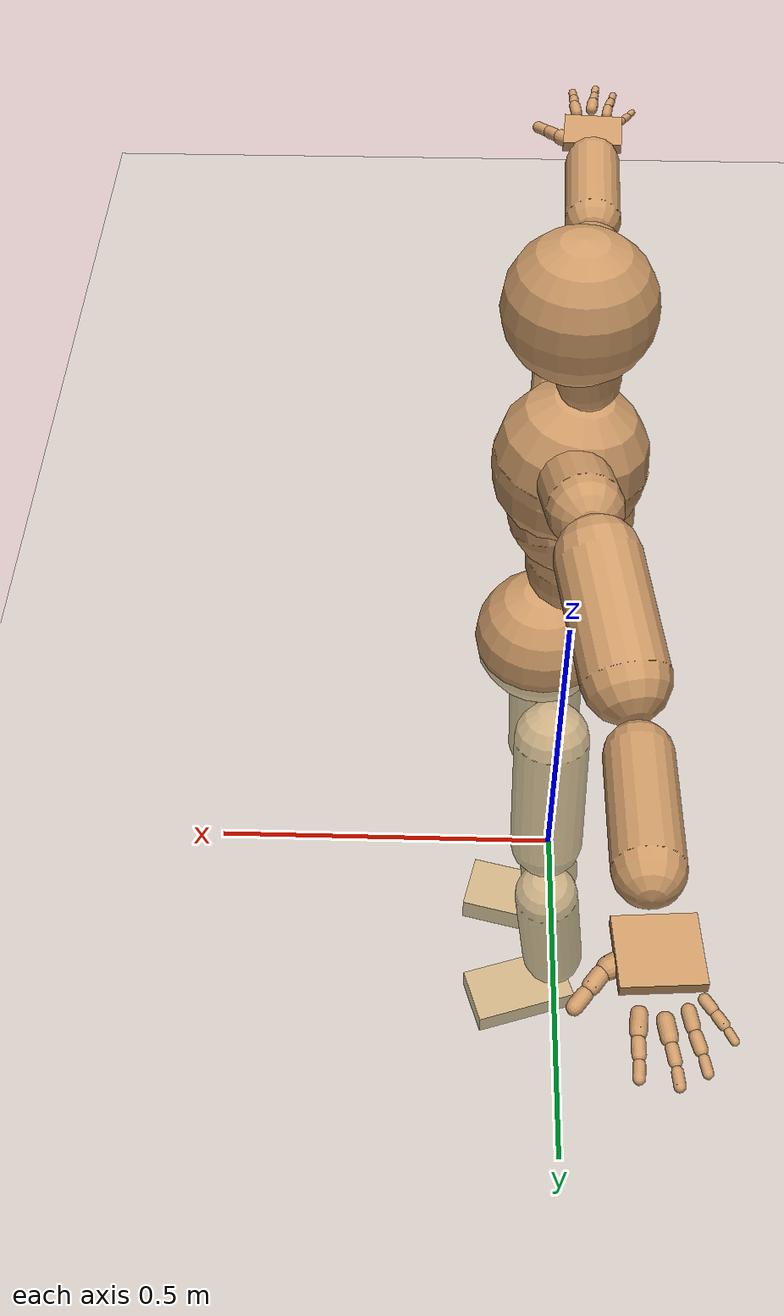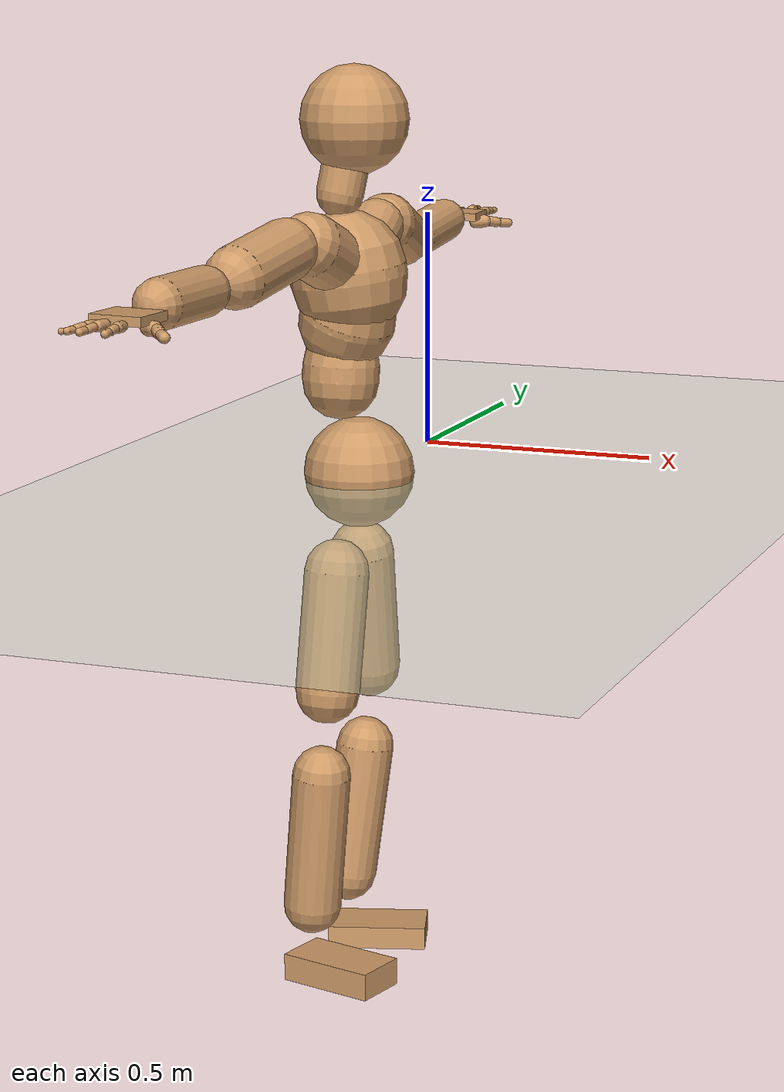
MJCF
<mujoco model="humanoid">
  <compiler coordinate="local" angle="radian"/>
  <default>
    <joint damping="0.0" armature="0.01" stiffness="0.0" limited="true"/>
    <geom conaffinity="1" condim="3" contype="7" margin="0.001" rgba="0.8 0.6 .4 1"/>
  </default>
  <asset>
    <texture type="skybox" builtin="gradient" rgb1=".4 .5 .6" rgb2="0 0 0" width="100" height="100"/>
    <texture builtin="flat" height="1278" mark="cross" markrgb="1 1 1" name="texgeom" random="0.01" rgb1="0.8 0.6 0.4" rgb2="0.8 0.6 0.4" type="cube" width="127"/>
    <texture builtin="checker" height="100" name="texplane" rgb1="0 0 0" rgb2="0.8 0.8 0.8" type="2d" width="100"/>
    <material name="MatPlane" reflectance="0.5" shininess="1" specular="1" texrepeat="60 60" texture="texplane"/>
    <material name="geom" texture="texgeom" texuniform="true"/>
  </asset>
  <worldbody>
    <light cutoff="100" diffuse="1 1 1" dir="-0 0 -1.3" directional="true" exponent="1" pos="0 0 1.3" specular=".1 .1 .1"/>
    <geom conaffinity="1" condim="3" name="floor" pos="0 0 0" rgba="0.8 0.9 0.8 1" size="100 100 .2" type="plane" material="MatPlane"/>
    <body name="Pelvis" pos="0.0015 -0.4033 0.0127">
      <freejoint name="Pelvis"/>
      <geom type="sphere" contype="1" conaffinity="1" density="500" size="0.1135" pos="0.0000 0.0000 0.0000" name="Pelvis"/>
      <body name="L_Hip" pos="-0.0247 0.0622 -0.101">
        <joint name="L_Hip_x" type="hinge" pos="0 0 0" axis="1 0 0" stiffness="800" damping="80" armature="0.02" range="-180.0000 180.0000"/>
        <joint name="L_Hip_y" type="hinge" pos="0 0 0" axis="0 1 0" stiffness="800" damping="80" armature="0.02" range="-180.0000 180.0000"/>
        <joint name="L_Hip_z" type="hinge" pos="0 0 0" axis="0 0 1" stiffness="800" damping="80" armature="0.02" range="-180.0000 180.0000"/>
        <geom type="capsule" contype="1" conaffinity="1" density="500" fromto="-0.0010 0.0145 -0.0861 -0.0041 0.0578 -0.3444" size="0.0665" name="L_Hip"/>
        <body name="L_Knee" pos="-0.0051 0.0723 -0.4306">
          <joint name="L_Knee_x" type="hinge" pos="0 0 0" axis="1 0 0" stiffness="800" damping="80" armature="0.02" range="-180.0000 180.0000"/>
          <joint name="L_Knee_y" type="hinge" pos="0 0 0" axis="0 1 0" stiffness="800" damping="80" armature="0.02" range="-180.0000 180.0000"/>
          <joint name="L_Knee_z" type="hinge" pos="0 0 0" axis="0 0 1" stiffness="800" damping="80" armature="0.02" range="-180.0000 180.0000"/>
          <geom type="capsule" contype="1" conaffinity="1" density="500" fromto="-0.0095 -0.0101 -0.0938 -0.0381 -0.0404 -0.3751" size="0.0607" name="L_Knee"/>
          <body name="L_Ankle" pos="-0.0476 -0.0505 -0.4688">
            <joint name="L_Ankle_x" type="hinge" pos="0 0 0" axis="1 0 0" stiffness="800" damping="80" armature="0.02" range="-180.0000 180.0000"/>
            <joint name="L_Ankle_y" type="hinge" pos="0 0 0" axis="0 1 0" stiffness="800" damping="80" armature="0.02" range="-180.0000 180.0000"/>
            <joint name="L_Ankle_z" type="hinge" pos="0 0 0" axis="0 0 1" stiffness="800" damping="80" armature="0.02" range="-180.0000 180.0000"/>
            <geom type="box" contype="1" conaffinity="1" density="500" pos="0.0744 0.0237 -0.0338" size="0.1036 0.0568 0.0236" quat="0.9881 0.0000 0.0000 0.1538" name="L_Ankle"/>
            <body name="L_Toe" pos="0.1489 0.0475 -0.0676">
              <joint name="L_Toe_x" type="hinge" pos="0 0 0" axis="1 0 0" stiffness="500" damping="50" armature="0.02" range="-180.0000 180.0000"/>
              <joint name="L_Toe_y" type="hinge" pos="0 0 0" axis="0 1 0" stiffness="500" damping="50" armature="0.02" range="-180.0000 180.0000"/>
              <joint name="L_Toe_z" type="hinge" pos="0 0 0" axis="0 0 1" stiffness="500" damping="50" armature="0.02" range="-180.0000 180.0000"/>
              <geom type="box" contype="1" conaffinity="1" density="500" pos="0.0000 0.0000 0.0331" size="0.0011 0.0027 0.0011" quat="0.9875 0.0000 0.0000 0.1579" name="L_Toe"/>
            </body>
          </body>
        </body>
      </body>
      <body name="R_Hip" pos="-0.0167 -0.0647 -0.1124">
        <joint name="R_Hip_x" type="hinge" pos="0 0 0" axis="1 0 0" stiffness="800" damping="80" armature="0.02" range="-180.0000 180.0000"/>
        <joint name="R_Hip_y" type="hinge" pos="0 0 0" axis="0 1 0" stiffness="800" damping="80" armature="0.02" range="-180.0000 180.0000"/>
        <joint name="R_Hip_z" type="hinge" pos="0 0 0" axis="0 0 1" stiffness="800" damping="80" armature="0.02" range="-180.0000 180.0000"/>
        <geom type="capsule" contype="1" conaffinity="1" density="500" fromto="-0.0028 -0.0108 -0.0824 -0.0114 -0.0430 -0.3296" size="0.0664" name="R_Hip"/>
        <body name="R_Knee" pos="-0.0142 -0.0538 -0.412">
          <joint name="R_Knee_x" type="hinge" pos="0 0 0" axis="1 0 0" stiffness="800" damping="80" armature="0.02" range="-180.0000 180.0000"/>
          <joint name="R_Knee_y" type="hinge" pos="0 0 0" axis="0 1 0" stiffness="800" damping="80" armature="0.02" range="-180.0000 180.0000"/>
          <joint name="R_Knee_z" type="hinge" pos="0 0 0" axis="0 0 1" stiffness="800" damping="80" armature="0.02" range="-180.0000 180.0000"/>
          <geom type="capsule" contype="1" conaffinity="1" density="500" fromto="-0.0092 0.0038 -0.0968 -0.0366 0.0153 -0.3872" size="0.0604" name="R_Knee"/>
          <body name="R_Ankle" pos="-0.0458 0.0191 -0.4841">
            <joint name="R_Ankle_x" type="hinge" pos="0 0 0" axis="1 0 0" stiffness="800" damping="80" armature="0.02" range="-180.0000 180.0000"/>
            <joint name="R_Ankle_y" type="hinge" pos="0 0 0" axis="0 1 0" stiffness="800" damping="80" armature="0.02" range="-180.0000 180.0000"/>
            <joint name="R_Ankle_z" type="hinge" pos="0 0 0" axis="0 0 1" stiffness="800" damping="80" armature="0.02" range="-180.0000 180.0000"/>
            <geom type="box" contype="1" conaffinity="1" density="500" pos="0.0779 -0.0187 -0.0330" size="0.1036 0.0568 0.0284" quat="0.9930 0.0000 0.0000 -0.1177" name="R_Ankle"/>
            <body name="R_Toe" pos="0.1558 -0.0375 -0.066">
              <joint name="R_Toe_x" type="hinge" pos="0 0 0" axis="1 0 0" stiffness="500" damping="50" armature="0.02" range="-180.0000 180.0000"/>
              <joint name="R_Toe_y" type="hinge" pos="0 0 0" axis="0 1 0" stiffness="500" damping="50" armature="0.02" range="-180.0000 180.0000"/>
              <joint name="R_Toe_z" type="hinge" pos="0 0 0" axis="0 0 1" stiffness="500" damping="50" armature="0.02" range="-180.0000 180.0000"/>
              <geom type="box" contype="1" conaffinity="1" density="500" pos="0.0000 0.0000 0.0275" size="0.0011 0.0027 0.0011" quat="0.9939 0.0000 0.0000 -0.1103" name="R_Toe"/>
            </body>
          </body>
        </body>
      </body>
      <body name="Torso" pos="-0.0426 -0.0018 0.1207">
        <joint name="Torso_x" type="hinge" pos="0 0 0" axis="1 0 0" stiffness="1000" damping="100" armature="0.02" range="-180.0000 180.0000"/>
        <joint name="Torso_y" type="hinge" pos="0 0 0" axis="0 1 0" stiffness="1000" damping="100" armature="0.02" range="-180.0000 180.0000"/>
        <joint name="Torso_z" type="hinge" pos="0 0 0" axis="0 0 1" stiffness="1000" damping="100" armature="0.02" range="-180.0000 180.0000"/>
        <geom type="capsule" contype="1" conaffinity="1" density="500" fromto="0.0020 0.0072 0.0977 0.0014 0.0048 0.0651" size="0.0789" name="Torso"/>
        <body name="Spine" pos="0.0034 0.0119 0.1628">
          <joint name="Spine_x" type="hinge" pos="0 0 0" axis="1 0 0" stiffness="1000" damping="100" armature="0.02" range="-180.0000 180.0000"/>
          <joint name="Spine_y" type="hinge" pos="0 0 0" axis="0 1 0" stiffness="1000" damping="100" armature="0.02" range="-180.0000 180.0000"/>
          <joint name="Spine_z" type="hinge" pos="0 0 0" axis="0 0 1" stiffness="1000" damping="100" armature="0.02" range="-180.0000 180.0000"/>
          <geom type="capsule" contype="1" conaffinity="1" density="500" fromto="0.0155 -0.0058 0.0381 0.0104 -0.0039 0.0254" size="0.0987" name="Spine"/>
          <body name="Chest" pos="0.0259 -0.0097 0.0634">
            <joint name="Chest_x" type="hinge" pos="0 0 0" axis="1 0 0" stiffness="1000" damping="100" armature="0.02" range="-180.0000 180.0000"/>
            <joint name="Chest_y" type="hinge" pos="0 0 0" axis="0 1 0" stiffness="1000" damping="100" armature="0.02" range="-180.0000 180.0000"/>
            <joint name="Chest_z" type="hinge" pos="0 0 0" axis="0 0 1" stiffness="1000" damping="100" armature="0.02" range="-180.0000 180.0000"/>
            <geom type="capsule" contype="1" conaffinity="1" density="500" fromto="-0.0085 -0.0034 0.0705 -0.0057 -0.0023 0.0470" size="0.1189" name="Chest"/>
            <body name="Neck" pos="-0.0294 -0.0116 0.1842">
              <joint name="Neck_x" type="hinge" pos="0 0 0" axis="1 0 0" stiffness="500" damping="50" armature="0.02" range="-180.0000 180.0000"/>
              <joint name="Neck_y" type="hinge" pos="0 0 0" axis="0 1 0" stiffness="500" damping="50" armature="0.02" range="-180.0000 180.0000"/>
              <joint name="Neck_z" type="hinge" pos="0 0 0" axis="0 0 1" stiffness="500" damping="50" armature="0.02" range="-180.0000 180.0000"/>
              <geom type="capsule" contype="1" conaffinity="1" density="500" fromto="0.0060 0.0051 0.0367 0.0238 0.0203 0.1468" size="0.0481" name="Neck"/>
              <body name="Head" pos="0.0298 0.0254 0.1835">
                <joint name="Head_x" type="hinge" pos="0 0 0" axis="1 0 0" stiffness="500" damping="50" armature="0.02" range="-180.0000 180.0000"/>
                <joint name="Head_y" type="hinge" pos="0 0 0" axis="0 1 0" stiffness="500" damping="50" armature="0.02" range="-180.0000 180.0000"/>
                <joint name="Head_z" type="hinge" pos="0 0 0" axis="0 0 1" stiffness="500" damping="50" armature="0.02" range="-180.0000 180.0000"/>
                <geom type="sphere" contype="1" conaffinity="1" density="500" size="0.1107" pos="0.0000 0.0000 0.0000" name="Head"/>
              </body>
            </body>
            <body name="L_Thorax" pos="-0.0048 0.0468 0.084">
              <joint name="L_Thorax_x" type="hinge" pos="0 0 0" axis="1 0 0" stiffness="500" damping="50" armature="0.02" range="-180.0000 180.0000"/>
              <joint name="L_Thorax_y" type="hinge" pos="0 0 0" axis="0 1 0" stiffness="500" damping="50" armature="0.02" range="-180.0000 180.0000"/>
              <joint name="L_Thorax_z" type="hinge" pos="0 0 0" axis="0 0 1" stiffness="500" damping="50" armature="0.02" range="-180.0000 180.0000"/>
              <geom type="capsule" contype="1" conaffinity="1" density="500" fromto="-0.0032 0.0324 0.0131 -0.0128 0.1294 0.0524" size="0.0567" name="L_Thorax"/>
              <body name="L_Shoulder" pos="-0.0161 0.1618 0.0655">
                <joint name="L_Shoulder_x" type="hinge" pos="0 0 0" axis="1 0 0" stiffness="500" damping="50" armature="0.02" range="-180.0000 180.0000"/>
                <joint name="L_Shoulder_y" type="hinge" pos="0 0 0" axis="0 1 0" stiffness="500" damping="50" armature="0.02" range="-180.0000 180.0000"/>
                <joint name="L_Shoulder_z" type="hinge" pos="0 0 0" axis="0 0 1" stiffness="500" damping="50" armature="0.02" range="-180.0000 180.0000"/>
                <geom type="capsule" contype="1" conaffinity="1" density="500" fromto="-0.0109 0.0562 -0.0174 -0.0437 0.2248 -0.0698" size="0.0629" name="L_Shoulder"/>
                <body name="L_Elbow" pos="-0.0546 0.281 -0.0872">
                  <joint name="L_Elbow_x" type="hinge" pos="0 0 0" axis="1 0 0" stiffness="500" damping="50" armature="0.02" range="-720.0000 720.0000"/>
                  <joint name="L_Elbow_y" type="hinge" pos="0 0 0" axis="0 1 0" stiffness="500" damping="50" armature="0.02" range="-720.0000 720.0000"/>
                  <joint name="L_Elbow_z" type="hinge" pos="0 0 0" axis="0 0 1" stiffness="500" damping="50" armature="0.02" range="-720.0000 720.0000"/>
                  <geom type="capsule" contype="1" conaffinity="1" density="500" fromto="0.0003 0.0603 0.0058 0.0011 0.2410 0.0231" size="0.0472" name="L_Elbow"/>
                  <body name="L_Wrist" pos="0.0014 0.3013 0.0289">
                    <joint name="L_Wrist_x" type="hinge" pos="0 0 0" axis="1 0 0" stiffness="300" damping="30" armature="0.02" range="-180.0000 180.0000"/>
                    <joint name="L_Wrist_y" type="hinge" pos="0 0 0" axis="0 1 0" stiffness="300" damping="30" armature="0.02" range="-180.0000 180.0000"/>
                    <joint name="L_Wrist_z" type="hinge" pos="0 0 0" axis="0 0 1" stiffness="300" damping="30" armature="0.02" range="-180.0000 180.0000"/>
                    <geom type="box" contype="1" conaffinity="1" density="500" pos="-0.0033 0.0516 -0.0059" size="0.0464 0.0512 0.0088" quat="0.7295 0.0000 0.0000 -0.6840" name="L_Wrist"/>
                    <body name="L_Index1" pos="0.0227 0.1207 -0.0086">
                      <joint name="L_Index1_x" type="hinge" pos="0 0 0" axis="1 0 0" stiffness="100" damping="10" armature="0.02" range="-180.0000 180.0000"/>
                      <joint name="L_Index1_y" type="hinge" pos="0 0 0" axis="0 1 0" stiffness="100" damping="10" armature="0.02" range="-180.0000 180.0000"/>
                      <joint name="L_Index1_z" type="hinge" pos="0 0 0" axis="0 0 1" stiffness="100" damping="10" armature="0.02" range="-180.0000 180.0000"/>
                      <geom type="capsule" contype="1" conaffinity="1" density="500" fromto="0.0008 0.0072 0.0004 0.0032 0.0287 0.0016" size="0.0103" name="L_Index1"/>
                      <body name="L_Index2" pos="0.004 0.0359 0.0019">
                        <joint name="L_Index2_x" type="hinge" pos="0 0 0" axis="1 0 0" stiffness="100" damping="10" armature="0.02" range="-180.0000 180.0000"/>
                        <joint name="L_Index2_y" type="hinge" pos="0 0 0" axis="0 1 0" stiffness="100" damping="10" armature="0.02" range="-180.0000 180.0000"/>
                        <joint name="L_Index2_z" type="hinge" pos="0 0 0" axis="0 0 1" stiffness="100" damping="10" armature="0.02" range="-180.0000 180.0000"/>
                        <geom type="capsule" contype="1" conaffinity="1" density="500" fromto="-0.0000 0.0050 -0.0006 -0.0001 0.0202 -0.0024" size="0.0084" name="L_Index2"/>
                        <body name="L_Index3" pos="-0.0001 0.0252 -0.003">
                          <joint name="L_Index3_x" type="hinge" pos="0 0 0" axis="1 0 0" stiffness="100" damping="10" armature="0.02" range="-180.0000 180.0000"/>
                          <joint name="L_Index3_y" type="hinge" pos="0 0 0" axis="0 1 0" stiffness="100" damping="10" armature="0.02" range="-180.0000 180.0000"/>
                          <joint name="L_Index3_z" type="hinge" pos="0 0 0" axis="0 0 1" stiffness="100" damping="10" armature="0.02" range="-180.0000 180.0000"/>
                          <geom type="capsule" contype="1" conaffinity="1" density="500" fromto="0.0004 0.0054 -0.0002 0.0015 0.0218 -0.0008" size="0.0072" name="L_Index3"/>
                        </body>
                      </body>
                    </body>
                    <body name="L_Middle1" pos="-0.0042 0.1295 -0.0054">
                      <joint name="L_Middle1_x" type="hinge" pos="0 0 0" axis="1 0 0" stiffness="100" damping="10" armature="0.02" range="-180.0000 180.0000"/>
                      <joint name="L_Middle1_y" type="hinge" pos="0 0 0" axis="0 1 0" stiffness="100" damping="10" armature="0.02" range="-180.0000 180.0000"/>
                      <joint name="L_Middle1_z" type="hinge" pos="0 0 0" axis="0 0 1" stiffness="100" damping="10" armature="0.02" range="-180.0000 180.0000"/>
                      <geom type="capsule" contype="1" conaffinity="1" density="500" fromto="-0.0009 0.0068 0.0001 -0.0037 0.0274 0.0004" size="0.0105" name="L_Middle1"/>
                      <body name="L_Middle2" pos="-0.0047 0.0342 0.0006">
                        <joint name="L_Middle2_x" type="hinge" pos="0 0 0" axis="1 0 0" stiffness="100" damping="10" armature="0.02" range="-180.0000 180.0000"/>
                        <joint name="L_Middle2_y" type="hinge" pos="0 0 0" axis="0 1 0" stiffness="100" damping="10" armature="0.02" range="-180.0000 180.0000"/>
                        <joint name="L_Middle2_z" type="hinge" pos="0 0 0" axis="0 0 1" stiffness="100" damping="10" armature="0.02" range="-180.0000 180.0000"/>
                        <geom type="capsule" contype="1" conaffinity="1" density="500" fromto="-0.0009 0.0052 -0.0006 -0.0037 0.0210 -0.0023" size="0.0078" name="L_Middle2"/>
                        <body name="L_Middle3" pos="-0.0046 0.0262 -0.0028">
                          <joint name="L_Middle3_x" type="hinge" pos="0 0 0" axis="1 0 0" stiffness="100" damping="10" armature="0.02" range="-180.0000 180.0000"/>
                          <joint name="L_Middle3_y" type="hinge" pos="0 0 0" axis="0 1 0" stiffness="100" damping="10" armature="0.02" range="-180.0000 180.0000"/>
                          <joint name="L_Middle3_z" type="hinge" pos="0 0 0" axis="0 0 1" stiffness="100" damping="10" armature="0.02" range="-180.0000 180.0000"/>
                          <geom type="capsule" contype="1" conaffinity="1" density="500" fromto="-0.0005 0.0056 -0.0002 -0.0021 0.0226 -0.0007" size="0.0069" name="L_Middle3"/>
                        </body>
                      </body>
                    </body>
                    <body name="L_Pinky1" pos="-0.0506 0.1006 -0.015">
                      <joint name="L_Pinky1_x" type="hinge" pos="0 0 0" axis="1 0 0" stiffness="100" damping="10" armature="0.02" range="-180.0000 180.0000"/>
                      <joint name="L_Pinky1_y" type="hinge" pos="0 0 0" axis="0 1 0" stiffness="100" damping="10" armature="0.02" range="-180.0000 180.0000"/>
                      <joint name="L_Pinky1_z" type="hinge" pos="0 0 0" axis="0 0 1" stiffness="100" damping="10" armature="0.02" range="-180.0000 180.0000"/>
                      <geom type="capsule" contype="1" conaffinity="1" density="500" fromto="-0.0025 0.0036 -0.0004 -0.0102 0.0145 -0.0016" size="0.0075" name="L_Pinky1"/>
                      <body name="L_Pinky2" pos="-0.0127 0.0182 -0.002">
                        <joint name="L_Pinky2_x" type="hinge" pos="0 0 0" axis="1 0 0" stiffness="100" damping="10" armature="0.02" range="-180.0000 180.0000"/>
                        <joint name="L_Pinky2_y" type="hinge" pos="0 0 0" axis="0 1 0" stiffness="100" damping="10" armature="0.02" range="-180.0000 180.0000"/>
                        <joint name="L_Pinky2_z" type="hinge" pos="0 0 0" axis="0 0 1" stiffness="100" damping="10" armature="0.02" range="-180.0000 180.0000"/>
                        <geom type="capsule" contype="1" conaffinity="1" density="500" fromto="-0.0024 0.0036 -0.0005 -0.0095 0.0142 -0.0018" size="0.0071" name="L_Pinky2"/>
                        <body name="L_Pinky3" pos="-0.0118 0.0178 -0.0023">
                          <joint name="L_Pinky3_x" type="hinge" pos="0 0 0" axis="1 0 0" stiffness="100" damping="10" armature="0.02" range="-180.0000 180.0000"/>
                          <joint name="L_Pinky3_y" type="hinge" pos="0 0 0" axis="0 1 0" stiffness="100" damping="10" armature="0.02" range="-180.0000 180.0000"/>
                          <joint name="L_Pinky3_z" type="hinge" pos="0 0 0" axis="0 0 1" stiffness="100" damping="10" armature="0.02" range="-180.0000 180.0000"/>
                          <geom type="capsule" contype="1" conaffinity="1" density="500" fromto="-0.0020 0.0040 -0.0001 -0.0079 0.0158 -0.0002" size="0.0054" name="L_Pinky3"/>
                        </body>
                      </body>
                    </body>
                    <body name="L_Ring1" pos="-0.0314 0.116 -0.0087">
                      <joint name="L_Ring1_x" type="hinge" pos="0 0 0" axis="1 0 0" stiffness="100" damping="10" armature="0.02" range="-180.0000 180.0000"/>
                      <joint name="L_Ring1_y" type="hinge" pos="0 0 0" axis="0 1 0" stiffness="100" damping="10" armature="0.02" range="-180.0000 180.0000"/>
                      <joint name="L_Ring1_z" type="hinge" pos="0 0 0" axis="0 0 1" stiffness="100" damping="10" armature="0.02" range="-180.0000 180.0000"/>
                      <geom type="capsule" contype="1" conaffinity="1" density="500" fromto="-0.0011 0.0064 0.0002 -0.0043 0.0256 0.0006" size="0.0089" name="L_Ring1"/>
                      <body name="L_Ring2" pos="-0.0053 0.0319 0.0008">
                        <joint name="L_Ring2_x" type="hinge" pos="0 0 0" axis="1 0 0" stiffness="100" damping="10" armature="0.02" range="-180.0000 180.0000"/>
                        <joint name="L_Ring2_y" type="hinge" pos="0 0 0" axis="0 1 0" stiffness="100" damping="10" armature="0.02" range="-180.0000 180.0000"/>
                        <joint name="L_Ring2_z" type="hinge" pos="0 0 0" axis="0 0 1" stiffness="100" damping="10" armature="0.02" range="-180.0000 180.0000"/>
                        <geom type="capsule" contype="1" conaffinity="1" density="500" fromto="-0.0015 0.0051 -0.0005 -0.0058 0.0205 -0.0020" size="0.0082" name="L_Ring2"/>
                        <body name="L_Ring3" pos="-0.0073 0.0257 -0.0025">
                          <joint name="L_Ring3_x" type="hinge" pos="0 0 0" axis="1 0 0" stiffness="100" damping="10" armature="0.02" range="-180.0000 180.0000"/>
                          <joint name="L_Ring3_y" type="hinge" pos="0 0 0" axis="0 1 0" stiffness="100" damping="10" armature="0.02" range="-180.0000 180.0000"/>
                          <joint name="L_Ring3_z" type="hinge" pos="0 0 0" axis="0 0 1" stiffness="100" damping="10" armature="0.02" range="-180.0000 180.0000"/>
                          <geom type="capsule" contype="1" conaffinity="1" density="500" fromto="-0.0011 0.0055 -0.0001 -0.0042 0.0221 -0.0004" size="0.0064" name="L_Ring3"/>
                        </body>
                      </body>
                    </body>
                    <body name="L_Thumb1" pos="0.0302 0.0488 -0.0216">
                      <joint name="L_Thumb1_x" type="hinge" pos="0 0 0" axis="1 0 0" stiffness="100" damping="10" armature="0.02" range="-180.0000 180.0000"/>
                      <joint name="L_Thumb1_y" type="hinge" pos="0 0 0" axis="0 1 0" stiffness="100" damping="10" armature="0.02" range="-180.0000 180.0000"/>
                      <joint name="L_Thumb1_z" type="hinge" pos="0 0 0" axis="0 0 1" stiffness="100" damping="10" armature="0.02" range="-180.0000 180.0000"/>
                      <geom type="capsule" contype="1" conaffinity="1" density="500" fromto="0.0059 0.0038 0.0004 0.0236 0.0153 0.0018" size="0.0142" name="L_Thumb1"/>
                      <body name="L_Thumb2" pos="0.0296 0.0191 0.0022">
                        <joint name="L_Thumb2_x" type="hinge" pos="0 0 0" axis="1 0 0" stiffness="100" damping="10" armature="0.02" range="-180.0000 180.0000"/>
                        <joint name="L_Thumb2_y" type="hinge" pos="0 0 0" axis="0 1 0" stiffness="100" damping="10" armature="0.02" range="-180.0000 180.0000"/>
                        <joint name="L_Thumb2_z" type="hinge" pos="0 0 0" axis="0 0 1" stiffness="100" damping="10" armature="0.02" range="-180.0000 180.0000"/>
                        <geom type="capsule" contype="1" conaffinity="1" density="500" fromto="0.0037 0.0046 -0.0010 0.0146 0.0184 -0.0042" size="0.0112" name="L_Thumb2"/>
                        <body name="L_Thumb3" pos="0.0183 0.023 -0.0052">
                          <joint name="L_Thumb3_x" type="hinge" pos="0 0 0" axis="1 0 0" stiffness="100" damping="10" armature="0.02" range="-180.0000 180.0000"/>
                          <joint name="L_Thumb3_y" type="hinge" pos="0 0 0" axis="0 1 0" stiffness="100" damping="10" armature="0.02" range="-180.0000 180.0000"/>
                          <joint name="L_Thumb3_z" type="hinge" pos="0 0 0" axis="0 0 1" stiffness="100" damping="10" armature="0.02" range="-180.0000 180.0000"/>
                          <geom type="capsule" contype="1" conaffinity="1" density="500" fromto="0.0041 0.0050 -0.0006 0.0162 0.0200 -0.0026" size="0.01" name="L_Thumb3"/>
                        </body>
                      </body>
                    </body>
                  </body>
                </body>
              </body>
            </body>
            <body name="R_Thorax" pos="-0.0084 -0.0523 0.0844">
              <joint name="R_Thorax_x" type="hinge" pos="0 0 0" axis="1 0 0" stiffness="500" damping="50" armature="0.02" range="-180.0000 180.0000"/>
              <joint name="R_Thorax_y" type="hinge" pos="0 0 0" axis="0 1 0" stiffness="500" damping="50" armature="0.02" range="-180.0000 180.0000"/>
              <joint name="R_Thorax_z" type="hinge" pos="0 0 0" axis="0 0 1" stiffness="500" damping="50" armature="0.02" range="-180.0000 180.0000"/>
              <geom type="capsule" contype="1" conaffinity="1" density="500" fromto="-0.0029 -0.0298 0.0128 -0.0115 -0.1194 0.0513" size="0.0665" name="R_Thorax"/>
              <body name="R_Shoulder" pos="-0.0144 -0.1492 0.0641">
                <joint name="R_Shoulder_x" type="hinge" pos="0 0 0" axis="1 0 0" stiffness="500" damping="50" armature="0.02" range="-180.0000 180.0000"/>
                <joint name="R_Shoulder_y" type="hinge" pos="0 0 0" axis="0 1 0" stiffness="500" damping="50" armature="0.02" range="-180.0000 180.0000"/>
                <joint name="R_Shoulder_z" type="hinge" pos="0 0 0" axis="0 0 1" stiffness="500" damping="50" armature="0.02" range="-180.0000 180.0000"/>
                <geom type="capsule" contype="1" conaffinity="1" density="500" fromto="-0.0078 -0.0604 -0.0106 -0.0311 -0.2415 -0.0424" size="0.0621" name="R_Shoulder"/>
                <body name="R_Elbow" pos="-0.0388 -0.3019 -0.053">
                  <joint name="R_Elbow_x" type="hinge" pos="0 0 0" axis="1 0 0" stiffness="500" damping="50" armature="0.02" range="-720.0000 720.0000"/>
                  <joint name="R_Elbow_y" type="hinge" pos="0 0 0" axis="0 1 0" stiffness="500" damping="50" armature="0.02" range="-720.0000 720.0000"/>
                  <joint name="R_Elbow_z" type="hinge" pos="0 0 0" axis="0 0 1" stiffness="500" damping="50" armature="0.02" range="-720.0000 720.0000"/>
                  <geom type="capsule" contype="1" conaffinity="1" density="500" fromto="-0.0023 -0.0584 -0.0001 -0.0092 -0.2336 -0.0003" size="0.0484" name="R_Elbow"/>
                  <body name="R_Wrist" pos="-0.0116 -0.292 -0.0004">
                    <joint name="R_Wrist_x" type="hinge" pos="0 0 0" axis="1 0 0" stiffness="300" damping="30" armature="0.02" range="-180.0000 180.0000"/>
                    <joint name="R_Wrist_y" type="hinge" pos="0 0 0" axis="0 1 0" stiffness="300" damping="30" armature="0.02" range="-180.0000 180.0000"/>
                    <joint name="R_Wrist_z" type="hinge" pos="0 0 0" axis="0 0 1" stiffness="300" damping="30" armature="0.02" range="-180.0000 180.0000"/>
                    <geom type="box" contype="1" conaffinity="1" density="500" pos="-0.0037 -0.0512 -0.0079" size="0.0464 0.0528 0.009" quat="0.7323 0.0000 0.0000 0.6810" name="R_Wrist"/>
                    <body name="R_Index1" pos="0.0219 -0.1199 -0.0125">
                      <joint name="R_Index1_x" type="hinge" pos="0 0 0" axis="1 0 0" stiffness="100" damping="10" armature="0.02" range="-180.0000 180.0000"/>
                      <joint name="R_Index1_y" type="hinge" pos="0 0 0" axis="0 1 0" stiffness="100" damping="10" armature="0.02" range="-180.0000 180.0000"/>
                      <joint name="R_Index1_z" type="hinge" pos="0 0 0" axis="0 0 1" stiffness="100" damping="10" armature="0.02" range="-180.0000 180.0000"/>
                      <geom type="capsule" contype="1" conaffinity="1" density="500" fromto="0.0008 -0.0072 0.0004 0.0032 -0.0287 0.0016" size="0.0103" name="R_Index1"/>
                      <body name="R_Index2" pos="0.004 -0.0359 0.0019">
                        <joint name="R_Index2_x" type="hinge" pos="0 0 0" axis="1 0 0" stiffness="100" damping="10" armature="0.02" range="-180.0000 180.0000"/>
                        <joint name="R_Index2_y" type="hinge" pos="0 0 0" axis="0 1 0" stiffness="100" damping="10" armature="0.02" range="-180.0000 180.0000"/>
                        <joint name="R_Index2_z" type="hinge" pos="0 0 0" axis="0 0 1" stiffness="100" damping="10" armature="0.02" range="-180.0000 180.0000"/>
                        <geom type="capsule" contype="1" conaffinity="1" density="500" fromto="-0.0000 -0.0050 -0.0006 -0.0001 -0.0202 -0.0024" size="0.0084" name="R_Index2"/>
                        <body name="R_Index3" pos="-0.0001 -0.0252 -0.003">
                          <joint name="R_Index3_x" type="hinge" pos="0 0 0" axis="1 0 0" stiffness="100" damping="10" armature="0.02" range="-180.0000 180.0000"/>
                          <joint name="R_Index3_y" type="hinge" pos="0 0 0" axis="0 1 0" stiffness="100" damping="10" armature="0.02" range="-180.0000 180.0000"/>
                          <joint name="R_Index3_z" type="hinge" pos="0 0 0" axis="0 0 1" stiffness="100" damping="10" armature="0.02" range="-180.0000 180.0000"/>
                          <geom type="capsule" contype="1" conaffinity="1" density="500" fromto="0.0004 -0.0046 -0.0002 0.0015 -0.0186 -0.0008" size="0.0075" name="R_Index3"/>
                        </body>
                      </body>
                    </body>
                    <body name="R_Middle1" pos="-0.005 -0.1288 -0.0093">
                      <joint name="R_Middle1_x" type="hinge" pos="0 0 0" axis="1 0 0" stiffness="100" damping="10" armature="0.02" range="-180.0000 180.0000"/>
                      <joint name="R_Middle1_y" type="hinge" pos="0 0 0" axis="0 1 0" stiffness="100" damping="10" armature="0.02" range="-180.0000 180.0000"/>
                      <joint name="R_Middle1_z" type="hinge" pos="0 0 0" axis="0 0 1" stiffness="100" damping="10" armature="0.02" range="-180.0000 180.0000"/>
                      <geom type="capsule" contype="1" conaffinity="1" density="500" fromto="-0.0009 -0.0068 0.0001 -0.0037 -0.0274 0.0004" size="0.0105" name="R_Middle1"/>
                      <body name="R_Middle2" pos="-0.0047 -0.0342 0.0006">
                        <joint name="R_Middle2_x" type="hinge" pos="0 0 0" axis="1 0 0" stiffness="100" damping="10" armature="0.02" range="-180.0000 180.0000"/>
                        <joint name="R_Middle2_y" type="hinge" pos="0 0 0" axis="0 1 0" stiffness="100" damping="10" armature="0.02" range="-180.0000 180.0000"/>
                        <joint name="R_Middle2_z" type="hinge" pos="0 0 0" axis="0 0 1" stiffness="100" damping="10" armature="0.02" range="-180.0000 180.0000"/>
                        <geom type="capsule" contype="1" conaffinity="1" density="500" fromto="-0.0009 -0.0052 -0.0006 -0.0037 -0.0210 -0.0023" size="0.0078" name="R_Middle2"/>
                        <body name="R_Middle3" pos="-0.0046 -0.0262 -0.0028">
                          <joint name="R_Middle3_x" type="hinge" pos="0 0 0" axis="1 0 0" stiffness="100" damping="10" armature="0.02" range="-180.0000 180.0000"/>
                          <joint name="R_Middle3_y" type="hinge" pos="0 0 0" axis="0 1 0" stiffness="100" damping="10" armature="0.02" range="-180.0000 180.0000"/>
                          <joint name="R_Middle3_z" type="hinge" pos="0 0 0" axis="0 0 1" stiffness="100" damping="10" armature="0.02" range="-180.0000 180.0000"/>
                          <geom type="capsule" contype="1" conaffinity="1" density="500" fromto="-0.0005 -0.0048 -0.0002 -0.0021 -0.0194 -0.0007" size="0.0072" name="R_Middle3"/>
                        </body>
                      </body>
                    </body>
                    <body name="R_Pinky1" pos="-0.0514 -0.0999 -0.019">
                      <joint name="R_Pinky1_x" type="hinge" pos="0 0 0" axis="1 0 0" stiffness="100" damping="10" armature="0.02" range="-180.0000 180.0000"/>
                      <joint name="R_Pinky1_y" type="hinge" pos="0 0 0" axis="0 1 0" stiffness="100" damping="10" armature="0.02" range="-180.0000 180.0000"/>
                      <joint name="R_Pinky1_z" type="hinge" pos="0 0 0" axis="0 0 1" stiffness="100" damping="10" armature="0.02" range="-180.0000 180.0000"/>
                      <geom type="capsule" contype="1" conaffinity="1" density="500" fromto="-0.0025 -0.0036 -0.0004 -0.0102 -0.0145 -0.0016" size="0.0075" name="R_Pinky1"/>
                      <body name="R_Pinky2" pos="-0.0127 -0.0182 -0.002">
                        <joint name="R_Pinky2_x" type="hinge" pos="0 0 0" axis="1 0 0" stiffness="100" damping="10" armature="0.02" range="-180.0000 180.0000"/>
                        <joint name="R_Pinky2_y" type="hinge" pos="0 0 0" axis="0 1 0" stiffness="100" damping="10" armature="0.02" range="-180.0000 180.0000"/>
                        <joint name="R_Pinky2_z" type="hinge" pos="0 0 0" axis="0 0 1" stiffness="100" damping="10" armature="0.02" range="-180.0000 180.0000"/>
                        <geom type="capsule" contype="1" conaffinity="1" density="500" fromto="-0.0024 -0.0036 -0.0005 -0.0095 -0.0142 -0.0018" size="0.0071" name="R_Pinky2"/>
                        <body name="R_Pinky3" pos="-0.0118 -0.0178 -0.0023">
                          <joint name="R_Pinky3_x" type="hinge" pos="0 0 0" axis="1 0 0" stiffness="100" damping="10" armature="0.02" range="-180.0000 180.0000"/>
                          <joint name="R_Pinky3_y" type="hinge" pos="0 0 0" axis="0 1 0" stiffness="100" damping="10" armature="0.02" range="-180.0000 180.0000"/>
                          <joint name="R_Pinky3_z" type="hinge" pos="0 0 0" axis="0 0 1" stiffness="100" damping="10" armature="0.02" range="-180.0000 180.0000"/>
                          <geom type="capsule" contype="1" conaffinity="1" density="500" fromto="-0.0020 -0.0032 -0.0001 -0.0079 -0.0126 -0.0002" size="0.0057" name="R_Pinky3"/>
                        </body>
                      </body>
                    </body>
                    <body name="R_Ring1" pos="-0.0322 -0.1152 -0.0126">
                      <joint name="R_Ring1_x" type="hinge" pos="0 0 0" axis="1 0 0" stiffness="100" damping="10" armature="0.02" range="-180.0000 180.0000"/>
                      <joint name="R_Ring1_y" type="hinge" pos="0 0 0" axis="0 1 0" stiffness="100" damping="10" armature="0.02" range="-180.0000 180.0000"/>
                      <joint name="R_Ring1_z" type="hinge" pos="0 0 0" axis="0 0 1" stiffness="100" damping="10" armature="0.02" range="-180.0000 180.0000"/>
                      <geom type="capsule" contype="1" conaffinity="1" density="500" fromto="-0.0011 -0.0064 0.0002 -0.0043 -0.0256 0.0006" size="0.0089" name="R_Ring1"/>
                      <body name="R_Ring2" pos="-0.0053 -0.0319 0.0008">
                        <joint name="R_Ring2_x" type="hinge" pos="0 0 0" axis="1 0 0" stiffness="100" damping="10" armature="0.02" range="-180.0000 180.0000"/>
                        <joint name="R_Ring2_y" type="hinge" pos="0 0 0" axis="0 1 0" stiffness="100" damping="10" armature="0.02" range="-180.0000 180.0000"/>
                        <joint name="R_Ring2_z" type="hinge" pos="0 0 0" axis="0 0 1" stiffness="100" damping="10" armature="0.02" range="-180.0000 180.0000"/>
                        <geom type="capsule" contype="1" conaffinity="1" density="500" fromto="-0.0015 -0.0051 -0.0005 -0.0058 -0.0205 -0.0020" size="0.0082" name="R_Ring2"/>
                        <body name="R_Ring3" pos="-0.0073 -0.0257 -0.0025">
                          <joint name="R_Ring3_x" type="hinge" pos="0 0 0" axis="1 0 0" stiffness="100" damping="10" armature="0.02" range="-180.0000 180.0000"/>
                          <joint name="R_Ring3_y" type="hinge" pos="0 0 0" axis="0 1 0" stiffness="100" damping="10" armature="0.02" range="-180.0000 180.0000"/>
                          <joint name="R_Ring3_z" type="hinge" pos="0 0 0" axis="0 0 1" stiffness="100" damping="10" armature="0.02" range="-180.0000 180.0000"/>
                          <geom type="capsule" contype="1" conaffinity="1" density="500" fromto="-0.0011 -0.0047 -0.0001 -0.0042 -0.0189 -0.0004" size="0.0067" name="R_Ring3"/>
                        </body>
                      </body>
                    </body>
                    <body name="R_Thumb1" pos="0.0294 -0.0481 -0.0255">
                      <joint name="R_Thumb1_x" type="hinge" pos="0 0 0" axis="1 0 0" stiffness="100" damping="10" armature="0.02" range="-180.0000 180.0000"/>
                      <joint name="R_Thumb1_y" type="hinge" pos="0 0 0" axis="0 1 0" stiffness="100" damping="10" armature="0.02" range="-180.0000 180.0000"/>
                      <joint name="R_Thumb1_z" type="hinge" pos="0 0 0" axis="0 0 1" stiffness="100" damping="10" armature="0.02" range="-180.0000 180.0000"/>
                      <geom type="capsule" contype="1" conaffinity="1" density="500" fromto="0.0059 -0.0038 0.0004 0.0236 -0.0153 0.0018" size="0.0142" name="R_Thumb1"/>
                      <body name="R_Thumb2" pos="0.0296 -0.0191 0.0022">
                        <joint name="R_Thumb2_x" type="hinge" pos="0 0 0" axis="1 0 0" stiffness="100" damping="10" armature="0.02" range="-180.0000 180.0000"/>
                        <joint name="R_Thumb2_y" type="hinge" pos="0 0 0" axis="0 1 0" stiffness="100" damping="10" armature="0.02" range="-180.0000 180.0000"/>
                        <joint name="R_Thumb2_z" type="hinge" pos="0 0 0" axis="0 0 1" stiffness="100" damping="10" armature="0.02" range="-180.0000 180.0000"/>
                        <geom type="capsule" contype="1" conaffinity="1" density="500" fromto="0.0037 -0.0046 -0.0010 0.0146 -0.0184 -0.0041" size="0.0112" name="R_Thumb2"/>
                        <body name="R_Thumb3" pos="0.0183 -0.023 -0.0052">
                          <joint name="R_Thumb3_x" type="hinge" pos="0 0 0" axis="1 0 0" stiffness="100" damping="10" armature="0.02" range="-180.0000 180.0000"/>
                          <joint name="R_Thumb3_y" type="hinge" pos="0 0 0" axis="0 1 0" stiffness="100" damping="10" armature="0.02" range="-180.0000 180.0000"/>
                          <joint name="R_Thumb3_z" type="hinge" pos="0 0 0" axis="0 0 1" stiffness="100" damping="10" armature="0.02" range="-180.0000 180.0000"/>
                          <geom type="capsule" contype="1" conaffinity="1" density="500" fromto="0.0041 -0.0042 -0.0006 0.0162 -0.0168 -0.0025" size="0.0103" name="R_Thumb3"/>
                        </body>
                      </body>
                    </body>
                  </body>
                </body>
              </body>
            </body>
          </body>
        </body>
      </body>
    </body>
  </worldbody>
  <actuator>
    <motor name="L_Hip_x" joint="L_Hip_x" gear="500"/>
    <motor name="L_Hip_y" joint="L_Hip_y" gear="500"/>
    <motor name="L_Hip_z" joint="L_Hip_z" gear="500"/>
    <motor name="L_Knee_x" joint="L_Knee_x" gear="500"/>
    <motor name="L_Knee_y" joint="L_Knee_y" gear="500"/>
    <motor name="L_Knee_z" joint="L_Knee_z" gear="500"/>
    <motor name="L_Ankle_x" joint="L_Ankle_x" gear="500"/>
    <motor name="L_Ankle_y" joint="L_Ankle_y" gear="500"/>
    <motor name="L_Ankle_z" joint="L_Ankle_z" gear="500"/>
    <motor name="L_Toe_x" joint="L_Toe_x" gear="500"/>
    <motor name="L_Toe_y" joint="L_Toe_y" gear="500"/>
    <motor name="L_Toe_z" joint="L_Toe_z" gear="500"/>
    <motor name="R_Hip_x" joint="R_Hip_x" gear="500"/>
    <motor name="R_Hip_y" joint="R_Hip_y" gear="500"/>
    <motor name="R_Hip_z" joint="R_Hip_z" gear="500"/>
    <motor name="R_Knee_x" joint="R_Knee_x" gear="500"/>
    <motor name="R_Knee_y" joint="R_Knee_y" gear="500"/>
    <motor name="R_Knee_z" joint="R_Knee_z" gear="500"/>
    <motor name="R_Ankle_x" joint="R_Ankle_x" gear="500"/>
    <motor name="R_Ankle_y" joint="R_Ankle_y" gear="500"/>
    <motor name="R_Ankle_z" joint="R_Ankle_z" gear="500"/>
    <motor name="R_Toe_x" joint="R_Toe_x" gear="500"/>
    <motor name="R_Toe_y" joint="R_Toe_y" gear="500"/>
    <motor name="R_Toe_z" joint="R_Toe_z" gear="500"/>
    <motor name="Torso_x" joint="Torso_x" gear="500"/>
    <motor name="Torso_y" joint="Torso_y" gear="500"/>
    <motor name="Torso_z" joint="Torso_z" gear="500"/>
    <motor name="Spine_x" joint="Spine_x" gear="500"/>
    <motor name="Spine_y" joint="Spine_y" gear="500"/>
    <motor name="Spine_z" joint="Spine_z" gear="500"/>
    <motor name="Chest_x" joint="Chest_x" gear="500"/>
    <motor name="Chest_y" joint="Chest_y" gear="500"/>
    <motor name="Chest_z" joint="Chest_z" gear="500"/>
    <motor name="Neck_x" joint="Neck_x" gear="500"/>
    <motor name="Neck_y" joint="Neck_y" gear="500"/>
    <motor name="Neck_z" joint="Neck_z" gear="500"/>
    <motor name="Head_x" joint="Head_x" gear="500"/>
    <motor name="Head_y" joint="Head_y" gear="500"/>
    <motor name="Head_z" joint="Head_z" gear="500"/>
    <motor name="L_Thorax_x" joint="L_Thorax_x" gear="500"/>
    <motor name="L_Thorax_y" joint="L_Thorax_y" gear="500"/>
    <motor name="L_Thorax_z" joint="L_Thorax_z" gear="500"/>
    <motor name="L_Shoulder_x" joint="L_Shoulder_x" gear="500"/>
    <motor name="L_Shoulder_y" joint="L_Shoulder_y" gear="500"/>
    <motor name="L_Shoulder_z" joint="L_Shoulder_z" gear="500"/>
    <motor name="L_Elbow_x" joint="L_Elbow_x" gear="500"/>
    <motor name="L_Elbow_y" joint="L_Elbow_y" gear="500"/>
    <motor name="L_Elbow_z" joint="L_Elbow_z" gear="500"/>
    <motor name="L_Wrist_x" joint="L_Wrist_x" gear="500"/>
    <motor name="L_Wrist_y" joint="L_Wrist_y" gear="500"/>
    <motor name="L_Wrist_z" joint="L_Wrist_z" gear="500"/>
    <motor name="L_Index1_x" joint="L_Index1_x" gear="500"/>
    <motor name="L_Index1_y" joint="L_Index1_y" gear="500"/>
    <motor name="L_Index1_z" joint="L_Index1_z" gear="500"/>
    <motor name="L_Index2_x" joint="L_Index2_x" gear="500"/>
    <motor name="L_Index2_y" joint="L_Index2_y" gear="500"/>
    <motor name="L_Index2_z" joint="L_Index2_z" gear="500"/>
    <motor name="L_Index3_x" joint="L_Index3_x" gear="500"/>
    <motor name="L_Index3_y" joint="L_Index3_y" gear="500"/>
    <motor name="L_Index3_z" joint="L_Index3_z" gear="500"/>
    <motor name="L_Middle1_x" joint="L_Middle1_x" gear="500"/>
    <motor name="L_Middle1_y" joint="L_Middle1_y" gear="500"/>
    <motor name="L_Middle1_z" joint="L_Middle1_z" gear="500"/>
    <motor name="L_Middle2_x" joint="L_Middle2_x" gear="500"/>
    <motor name="L_Middle2_y" joint="L_Middle2_y" gear="500"/>
    <motor name="L_Middle2_z" joint="L_Middle2_z" gear="500"/>
    <motor name="L_Middle3_x" joint="L_Middle3_x" gear="500"/>
    <motor name="L_Middle3_y" joint="L_Middle3_y" gear="500"/>
    <motor name="L_Middle3_z" joint="L_Middle3_z" gear="500"/>
    <motor name="L_Pinky1_x" joint="L_Pinky1_x" gear="500"/>
    <motor name="L_Pinky1_y" joint="L_Pinky1_y" gear="500"/>
    <motor name="L_Pinky1_z" joint="L_Pinky1_z" gear="500"/>
    <motor name="L_Pinky2_x" joint="L_Pinky2_x" gear="500"/>
    <motor name="L_Pinky2_y" joint="L_Pinky2_y" gear="500"/>
    <motor name="L_Pinky2_z" joint="L_Pinky2_z" gear="500"/>
    <motor name="L_Pinky3_x" joint="L_Pinky3_x" gear="500"/>
    <motor name="L_Pinky3_y" joint="L_Pinky3_y" gear="500"/>
    <motor name="L_Pinky3_z" joint="L_Pinky3_z" gear="500"/>
    <motor name="L_Ring1_x" joint="L_Ring1_x" gear="500"/>
    <motor name="L_Ring1_y" joint="L_Ring1_y" gear="500"/>
    <motor name="L_Ring1_z" joint="L_Ring1_z" gear="500"/>
    <motor name="L_Ring2_x" joint="L_Ring2_x" gear="500"/>
    <motor name="L_Ring2_y" joint="L_Ring2_y" gear="500"/>
    <motor name="L_Ring2_z" joint="L_Ring2_z" gear="500"/>
    <motor name="L_Ring3_x" joint="L_Ring3_x" gear="500"/>
    <motor name="L_Ring3_y" joint="L_Ring3_y" gear="500"/>
    <motor name="L_Ring3_z" joint="L_Ring3_z" gear="500"/>
    <motor name="L_Thumb1_x" joint="L_Thumb1_x" gear="500"/>
    <motor name="L_Thumb1_y" joint="L_Thumb1_y" gear="500"/>
    <motor name="L_Thumb1_z" joint="L_Thumb1_z" gear="500"/>
    <motor name="L_Thumb2_x" joint="L_Thumb2_x" gear="500"/>
    <motor name="L_Thumb2_y" joint="L_Thumb2_y" gear="500"/>
    <motor name="L_Thumb2_z" joint="L_Thumb2_z" gear="500"/>
    <motor name="L_Thumb3_x" joint="L_Thumb3_x" gear="500"/>
    <motor name="L_Thumb3_y" joint="L_Thumb3_y" gear="500"/>
    <motor name="L_Thumb3_z" joint="L_Thumb3_z" gear="500"/>
    <motor name="R_Thorax_x" joint="R_Thorax_x" gear="500"/>
    <motor name="R_Thorax_y" joint="R_Thorax_y" gear="500"/>
    <motor name="R_Thorax_z" joint="R_Thorax_z" gear="500"/>
    <motor name="R_Shoulder_x" joint="R_Shoulder_x" gear="500"/>
    <motor name="R_Shoulder_y" joint="R_Shoulder_y" gear="500"/>
    <motor name="R_Shoulder_z" joint="R_Shoulder_z" gear="500"/>
    <motor name="R_Elbow_x" joint="R_Elbow_x" gear="500"/>
    <motor name="R_Elbow_y" joint="R_Elbow_y" gear="500"/>
    <motor name="R_Elbow_z" joint="R_Elbow_z" gear="500"/>
    <motor name="R_Wrist_x" joint="R_Wrist_x" gear="500"/>
    <motor name="R_Wrist_y" joint="R_Wrist_y" gear="500"/>
    <motor name="R_Wrist_z" joint="R_Wrist_z" gear="500"/>
    <motor name="R_Index1_x" joint="R_Index1_x" gear="500"/>
    <motor name="R_Index1_y" joint="R_Index1_y" gear="500"/>
    <motor name="R_Index1_z" joint="R_Index1_z" gear="500"/>
    <motor name="R_Index2_x" joint="R_Index2_x" gear="500"/>
    <motor name="R_Index2_y" joint="R_Index2_y" gear="500"/>
    <motor name="R_Index2_z" joint="R_Index2_z" gear="500"/>
    <motor name="R_Index3_x" joint="R_Index3_x" gear="500"/>
    <motor name="R_Index3_y" joint="R_Index3_y" gear="500"/>
    <motor name="R_Index3_z" joint="R_Index3_z" gear="500"/>
    <motor name="R_Middle1_x" joint="R_Middle1_x" gear="500"/>
    <motor name="R_Middle1_y" joint="R_Middle1_y" gear="500"/>
    <motor name="R_Middle1_z" joint="R_Middle1_z" gear="500"/>
    <motor name="R_Middle2_x" joint="R_Middle2_x" gear="500"/>
    <motor name="R_Middle2_y" joint="R_Middle2_y" gear="500"/>
    <motor name="R_Middle2_z" joint="R_Middle2_z" gear="500"/>
    <motor name="R_Middle3_x" joint="R_Middle3_x" gear="500"/>
    <motor name="R_Middle3_y" joint="R_Middle3_y" gear="500"/>
    <motor name="R_Middle3_z" joint="R_Middle3_z" gear="500"/>
    <motor name="R_Pinky1_x" joint="R_Pinky1_x" gear="500"/>
    <motor name="R_Pinky1_y" joint="R_Pinky1_y" gear="500"/>
    <motor name="R_Pinky1_z" joint="R_Pinky1_z" gear="500"/>
    <motor name="R_Pinky2_x" joint="R_Pinky2_x" gear="500"/>
    <motor name="R_Pinky2_y" joint="R_Pinky2_y" gear="500"/>
    <motor name="R_Pinky2_z" joint="R_Pinky2_z" gear="500"/>
    <motor name="R_Pinky3_x" joint="R_Pinky3_x" gear="500"/>
    <motor name="R_Pinky3_y" joint="R_Pinky3_y" gear="500"/>
    <motor name="R_Pinky3_z" joint="R_Pinky3_z" gear="500"/>
    <motor name="R_Ring1_x" joint="R_Ring1_x" gear="500"/>
    <motor name="R_Ring1_y" joint="R_Ring1_y" gear="500"/>
    <motor name="R_Ring1_z" joint="R_Ring1_z" gear="500"/>
    <motor name="R_Ring2_x" joint="R_Ring2_x" gear="500"/>
    <motor name="R_Ring2_y" joint="R_Ring2_y" gear="500"/>
    <motor name="R_Ring2_z" joint="R_Ring2_z" gear="500"/>
    <motor name="R_Ring3_x" joint="R_Ring3_x" gear="500"/>
    <motor name="R_Ring3_y" joint="R_Ring3_y" gear="500"/>
    <motor name="R_Ring3_z" joint="R_Ring3_z" gear="500"/>
    <motor name="R_Thumb1_x" joint="R_Thumb1_x" gear="500"/>
    <motor name="R_Thumb1_y" joint="R_Thumb1_y" gear="500"/>
    <motor name="R_Thumb1_z" joint="R_Thumb1_z" gear="500"/>
    <motor name="R_Thumb2_x" joint="R_Thumb2_x" gear="500"/>
    <motor name="R_Thumb2_y" joint="R_Thumb2_y" gear="500"/>
    <motor name="R_Thumb2_z" joint="R_Thumb2_z" gear="500"/>
    <motor name="R_Thumb3_x" joint="R_Thumb3_x" gear="500"/>
    <motor name="R_Thumb3_y" joint="R_Thumb3_y" gear="500"/>
    <motor name="R_Thumb3_z" joint="R_Thumb3_z" gear="500"/>
  </actuator>
  <contact>
    <exclude body1="Torso" body2="Chest"/>
    <exclude body1="Head" body2="Chest"/>
    <exclude body1="R_Knee" body2="R_Toe"/>
    <exclude body1="R_Knee" body2="L_Ankle"/>
    <exclude body1="R_Knee" body2="L_Toe"/>
    <exclude body1="L_Knee" body2="L_Toe"/>
    <exclude body1="L_Knee" body2="R_Ankle"/>
    <exclude body1="L_Knee" body2="R_Toe"/>
    <exclude body1="L_Shoulder" body2="Chest"/>
    <exclude body1="R_Shoulder" body2="Chest"/>
  </contact>
  <sensor/>
  <size njmax="700" nconmax="700"/>
</mujoco>
